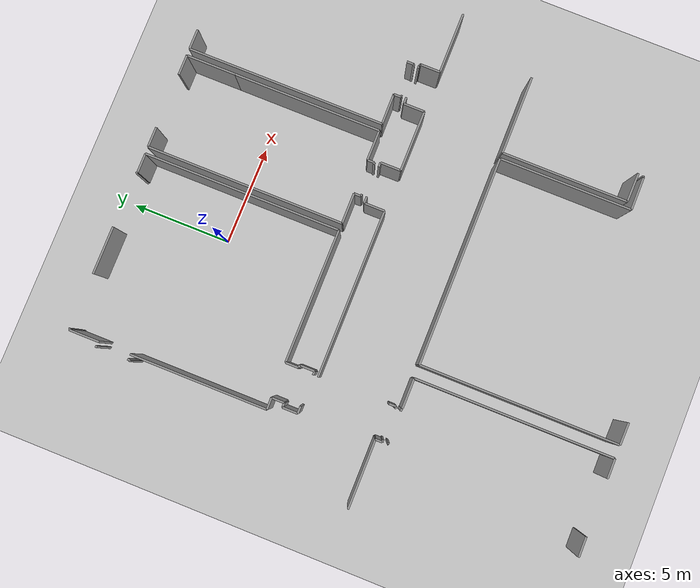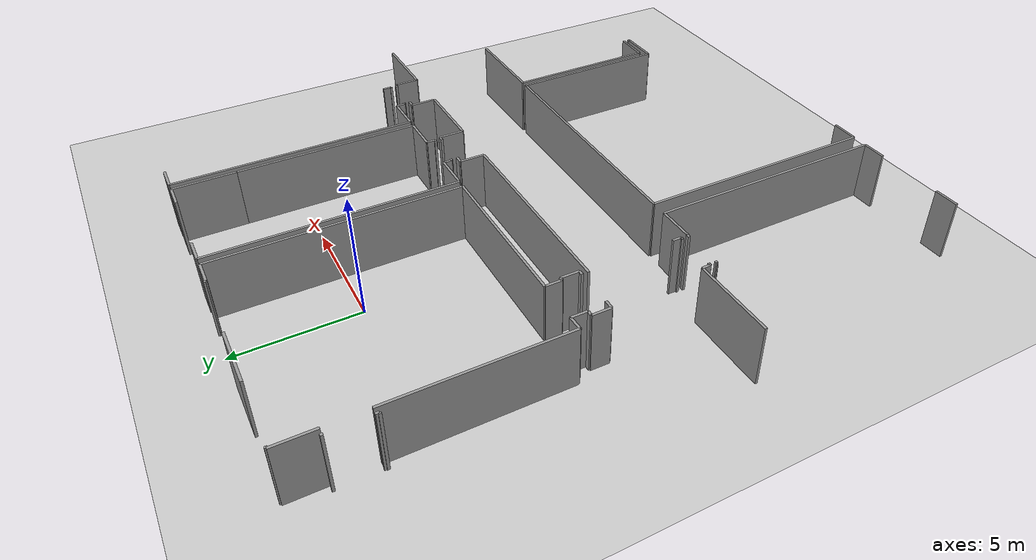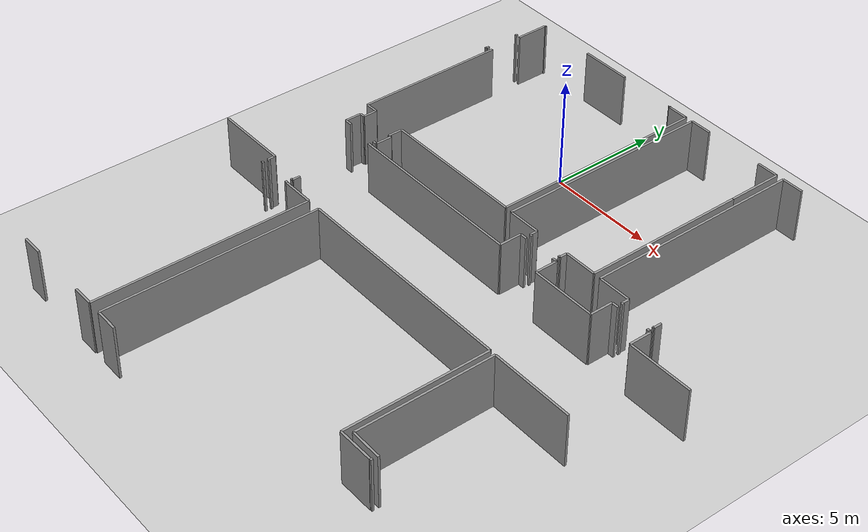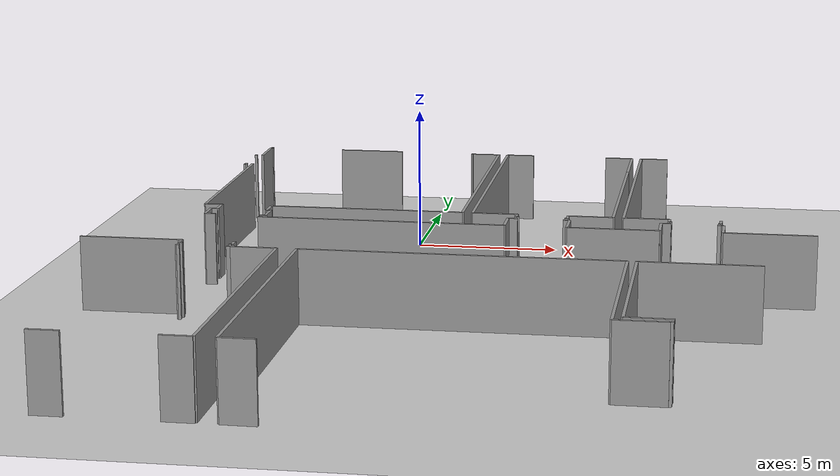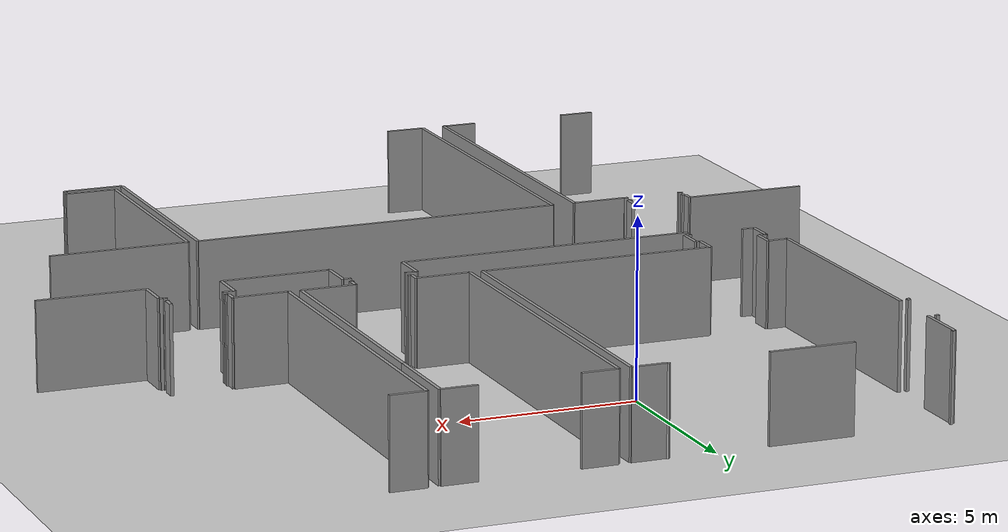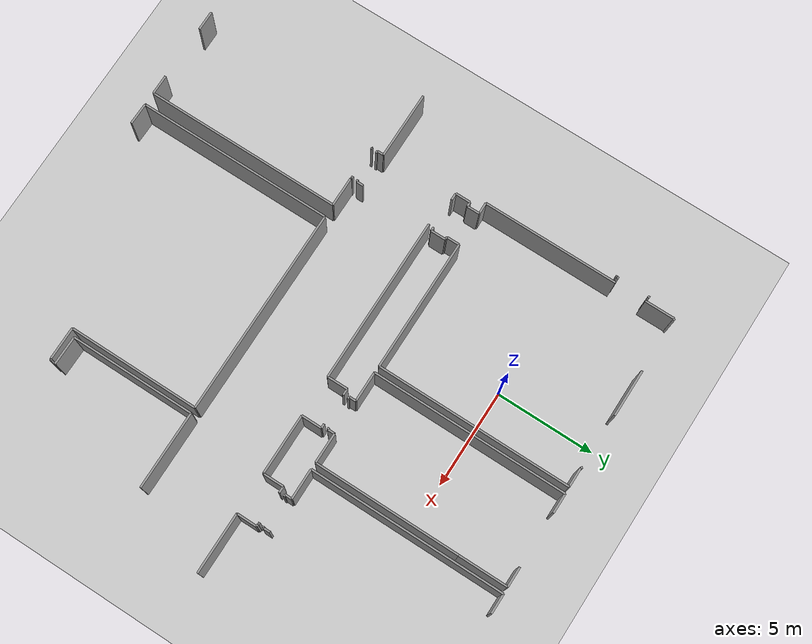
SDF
<sdf version="1.6">
 <world name="default">
  <model name="ground_plane">
   <static>1</static>
   <link name="link">
    <collision name="collision">
     <geometry><plane><normal>0 0 1</normal><size>100 100</size></plane></geometry>
     <surface><friction><ode><mu>100</mu><mu2>50</mu2></ode></friction></surface>
    </collision>
    <visual name="visual">
     <cast_shadows>0</cast_shadows>
     <geometry><plane><normal>0 0 1</normal><size>100 100</size></plane></geometry>
     <material>
      <script><uri>file://media/materials/scripts/gazebo.material</uri><name>Gazebo/Grey</name></script>
     </material>
    </visual>
   </link>
  </model>
  <model name="50055638">
   <static>1</static>
   <link name="Wall_249">
    <collision name="Wall_249_Collision">
     <geometry><box><size>8.40841642359 0.1 2.5</size></box></geometry>
     <pose>4.2042082118 0 1.25 0 0 0</pose>
    </collision>
    <visual name="Wall_249_Visual">
     <pose>4.2042082118 0 1.25 0 0 0</pose>
     <geometry><box><size>8.40841642359 0.1 2.5</size></box></geometry>
     <material>
      <script><uri>file://media/materials/scripts/gazebo.material</uri><name>Gazebo/Grey</name></script>
      <ambient>1 1 1 1</ambient>
     </material>
    </visual>
    <pose>66.1795003781 -27.6007727553 0 0 0 0.0</pose>
   </link>
   <link name="Wall_250">
    <collision name="Wall_250_Collision">
     <geometry><box><size>1.03114534281 0.1 2.5</size></box></geometry>
     <pose>0.515572671407 0 1.25 0 0 0</pose>
    </collision>
    <visual name="Wall_250_Visual">
     <pose>0.515572671407 0 1.25 0 0 0</pose>
     <geometry><box><size>1.03114534281 0.1 2.5</size></box></geometry>
     <material>
      <script><uri>file://media/materials/scripts/gazebo.material</uri><name>Gazebo/Grey</name></script>
      <ambient>1 1 1 1</ambient>
     </material>
    </visual>
    <pose>74.5879168017 -27.6007727553 0 0 0 1.57079632679</pose>
   </link>
   <link name="Wall_251">
    <collision name="Wall_251_Collision">
     <geometry><box><size>0.328420999117 0.1 2.5</size></box></geometry>
     <pose>0.164210499558 0 1.25 0 0 0</pose>
    </collision>
    <visual name="Wall_251_Visual">
     <pose>0.164210499558 0 1.25 0 0 0</pose>
     <geometry><box><size>0.328420999117 0.1 2.5</size></box></geometry>
     <material>
      <script><uri>file://media/materials/scripts/gazebo.material</uri><name>Gazebo/Grey</name></script>
      <ambient>1 1 1 1</ambient>
     </material>
    </visual>
    <pose>74.5879168017 -26.5696274125 0 0 0 0.0</pose>
   </link>
   <link name="Wall_252">
    <collision name="Wall_252_Collision">
     <geometry><box><size>0.226234279577 0.1 2.5</size></box></geometry>
     <pose>0.113117139789 0 1.25 0 0 0</pose>
    </collision>
    <visual name="Wall_252_Visual">
     <pose>0.113117139789 0 1.25 0 0 0</pose>
     <geometry><box><size>0.226234279577 0.1 2.5</size></box></geometry>
     <material>
      <script><uri>file://media/materials/scripts/gazebo.material</uri><name>Gazebo/Grey</name></script>
      <ambient>1 1 1 1</ambient>
     </material>
    </visual>
    <pose>76.4529515312 -26.5696274125 0 0 0 0.0</pose>
   </link>
   <link name="Wall_253">
    <collision name="Wall_253_Collision">
     <geometry><box><size>1.03559376966 0.1 2.5</size></box></geometry>
     <pose>0.51779688483 0 1.25 0 0 0</pose>
    </collision>
    <visual name="Wall_253_Visual">
     <pose>0.51779688483 0 1.25 0 0 0</pose>
     <geometry><box><size>1.03559376966 0.1 2.5</size></box></geometry>
     <material>
      <script><uri>file://media/materials/scripts/gazebo.material</uri><name>Gazebo/Grey</name></script>
      <ambient>1 1 1 1</ambient>
     </material>
    </visual>
    <pose>76.6791858108 -26.5696274125 0 0 0 -1.57079632679</pose>
   </link>
   <link name="Wall_254">
    <collision name="Wall_254_Collision">
     <geometry><box><size>3.06636417364 0.1 2.5</size></box></geometry>
     <pose>1.53318208682 0 1.25 0 0 0</pose>
    </collision>
    <visual name="Wall_254_Visual">
     <pose>1.53318208682 0 1.25 0 0 0</pose>
     <geometry><box><size>3.06636417364 0.1 2.5</size></box></geometry>
     <material>
      <script><uri>file://media/materials/scripts/gazebo.material</uri><name>Gazebo/Grey</name></script>
      <ambient>1 1 1 1</ambient>
     </material>
    </visual>
    <pose>76.6791858108 -27.6052211821 0 0 0 0.0</pose>
   </link>
   <link name="Wall_255">
    <collision name="Wall_255_Collision">
     <geometry><box><size>1.05326037913 0.1 2.5</size></box></geometry>
     <pose>0.526630189567 0 1.25 0 0 0</pose>
    </collision>
    <visual name="Wall_255_Visual">
     <pose>0.526630189567 0 1.25 0 0 0</pose>
     <geometry><box><size>1.05326037913 0.1 2.5</size></box></geometry>
     <material>
      <script><uri>file://media/materials/scripts/gazebo.material</uri><name>Gazebo/Grey</name></script>
      <ambient>1 1 1 1</ambient>
     </material>
    </visual>
    <pose>79.7455499844 -27.6052211821 0 0 0 1.57079632679</pose>
   </link>
   <link name="Wall_256">
    <collision name="Wall_256_Collision">
     <geometry><box><size>0.328548097027 0.1 2.5</size></box></geometry>
     <pose>0.164274048513 0 1.25 0 0 0</pose>
    </collision>
    <visual name="Wall_256_Visual">
     <pose>0.164274048513 0 1.25 0 0 0</pose>
     <geometry><box><size>0.328548097027 0.1 2.5</size></box></geometry>
     <material>
      <script><uri>file://media/materials/scripts/gazebo.material</uri><name>Gazebo/Grey</name></script>
      <ambient>1 1 1 1</ambient>
     </material>
    </visual>
    <pose>79.7455499844 -26.551960803 0 0 0 0.0</pose>
   </link>
   <link name="Wall_257">
    <collision name="Wall_257_Collision">
     <geometry><box><size>0.122522385119 0.1 2.5</size></box></geometry>
     <pose>0.0612611925597 0 1.25 0 0 0</pose>
    </collision>
    <visual name="Wall_257_Visual">
     <pose>0.0612611925597 0 1.25 0 0 0</pose>
     <geometry><box><size>0.122522385119 0.1 2.5</size></box></geometry>
     <material>
      <script><uri>file://media/materials/scripts/gazebo.material</uri><name>Gazebo/Grey</name></script>
      <ambient>1 1 1 1</ambient>
     </material>
    </visual>
    <pose>81.614778945 -26.551960803 0 0 0 0.0</pose>
   </link>
   <link name="Wall_258">
    <collision name="Wall_258_Collision">
     <geometry><box><size>0.0277073443527 0.1 2.5</size></box></geometry>
     <pose>0.0138536721764 0 1.25 0 0 0</pose>
    </collision>
    <visual name="Wall_258_Visual">
     <pose>0.0138536721764 0 1.25 0 0 0</pose>
     <geometry><box><size>0.0277073443527 0.1 2.5</size></box></geometry>
     <material>
      <script><uri>file://media/materials/scripts/gazebo.material</uri><name>Gazebo/Grey</name></script>
      <ambient>1 1 1 1</ambient>
     </material>
    </visual>
    <pose>81.7373013301 -26.551960803 0 0 0 -1.57079632679</pose>
   </link>
   <link name="Wall_259">
    <collision name="Wall_259_Collision">
     <geometry><box><size>0.0911292013803 0.1 2.5</size></box></geometry>
     <pose>0.0455646006901 0 1.25 0 0 0</pose>
    </collision>
    <visual name="Wall_259_Visual">
     <pose>0.0455646006901 0 1.25 0 0 0</pose>
     <geometry><box><size>0.0911292013803 0.1 2.5</size></box></geometry>
     <material>
      <script><uri>file://media/materials/scripts/gazebo.material</uri><name>Gazebo/Grey</name></script>
      <ambient>1 1 1 1</ambient>
     </material>
    </visual>
    <pose>81.7373013301 -26.5796681474 0 0 0 0.0</pose>
   </link>
   <link name="Wall_260">
    <collision name="Wall_260_Collision">
     <geometry><box><size>1.01843555183 0.1 2.5</size></box></geometry>
     <pose>0.509217775914 0 1.25 0 0 0</pose>
    </collision>
    <visual name="Wall_260_Visual">
     <pose>0.509217775914 0 1.25 0 0 0</pose>
     <geometry><box><size>1.01843555183 0.1 2.5</size></box></geometry>
     <material>
      <script><uri>file://media/materials/scripts/gazebo.material</uri><name>Gazebo/Grey</name></script>
      <ambient>1 1 1 1</ambient>
     </material>
    </visual>
    <pose>81.8284305315 -26.5796681474 0 0 0 -1.57079632679</pose>
   </link>
   <link name="Wall_261">
    <collision name="Wall_261_Collision">
     <geometry><box><size>3.07182938377 0.1 2.5</size></box></geometry>
     <pose>1.53591469188 0 1.25 0 0 0</pose>
    </collision>
    <visual name="Wall_261_Visual">
     <pose>1.53591469188 0 1.25 0 0 0</pose>
     <geometry><box><size>3.07182938377 0.1 2.5</size></box></geometry>
     <material>
      <script><uri>file://media/materials/scripts/gazebo.material</uri><name>Gazebo/Grey</name></script>
      <ambient>1 1 1 1</ambient>
     </material>
    </visual>
    <pose>81.8284305315 -27.5981036992 0 0 0 0.0</pose>
   </link>
   <link name="Wall_297">
    <collision name="Wall_297_Collision">
     <geometry><box><size>0.356763833019 0.1 2.5</size></box></geometry>
     <pose>0.178381916509 0 1.25 0 0 0</pose>
    </collision>
    <visual name="Wall_297_Visual">
     <pose>0.178381916509 0 1.25 0 0 0</pose>
     <geometry><box><size>0.356763833019 0.1 2.5</size></box></geometry>
     <material>
      <script><uri>file://media/materials/scripts/gazebo.material</uri><name>Gazebo/Grey</name></script>
      <ambient>1 1 1 1</ambient>
     </material>
    </visual>
    <pose>66.2657998589 -31.1180803132 0 0 0 -1.57079632679</pose>
   </link>
   <link name="Wall_298">
    <collision name="Wall_298_Collision">
     <geometry><box><size>0.108668712943 0.1 2.5</size></box></geometry>
     <pose>0.0543343564715 0 1.25 0 0 0</pose>
    </collision>
    <visual name="Wall_298_Visual">
     <pose>0.0543343564715 0 1.25 0 0 0</pose>
     <geometry><box><size>0.108668712943 0.1 2.5</size></box></geometry>
     <material>
      <script><uri>file://media/materials/scripts/gazebo.material</uri><name>Gazebo/Grey</name></script>
      <ambient>1 1 1 1</ambient>
     </material>
    </visual>
    <pose>66.2657998589 -31.4748441462 0 0 0 3.14159265359</pose>
   </link>
   <link name="Wall_299">
    <collision name="Wall_299_Collision">
     <geometry><box><size>0.109939692042 0.1 2.5</size></box></geometry>
     <pose>0.0549698460209 0 1.25 0 0 0</pose>
    </collision>
    <visual name="Wall_299_Visual">
     <pose>0.0549698460209 0 1.25 0 0 0</pose>
     <geometry><box><size>0.109939692042 0.1 2.5</size></box></geometry>
     <material>
      <script><uri>file://media/materials/scripts/gazebo.material</uri><name>Gazebo/Grey</name></script>
      <ambient>1 1 1 1</ambient>
     </material>
    </visual>
    <pose>64.6254742341 -31.4748441462 0 0 0 3.14159265359</pose>
   </link>
   <link name="Wall_300">
    <collision name="Wall_300_Collision">
     <geometry><box><size>0.343037258752 0.1 2.5</size></box></geometry>
     <pose>0.171518629376 0 1.25 0 0 0</pose>
    </collision>
    <visual name="Wall_300_Visual">
     <pose>0.171518629376 0 1.25 0 0 0</pose>
     <geometry><box><size>0.343037258752 0.1 2.5</size></box></geometry>
     <material>
      <script><uri>file://media/materials/scripts/gazebo.material</uri><name>Gazebo/Grey</name></script>
      <ambient>1 1 1 1</ambient>
     </material>
    </visual>
    <pose>64.515534542 -31.4748441462 0 0 0 1.57079632679</pose>
   </link>
   <link name="Wall_301">
    <collision name="Wall_301_Collision">
     <geometry><box><size>3.41766279654 0.1 2.5</size></box></geometry>
     <pose>1.70883139827 0 1.25 0 0 0</pose>
    </collision>
    <visual name="Wall_301_Visual">
     <pose>1.70883139827 0 1.25 0 0 0</pose>
     <geometry><box><size>3.41766279654 0.1 2.5</size></box></geometry>
     <material>
      <script><uri>file://media/materials/scripts/gazebo.material</uri><name>Gazebo/Grey</name></script>
      <ambient>1 1 1 1</ambient>
     </material>
    </visual>
    <pose>64.515534542 -31.1318068874 0 0 0 3.14159265359</pose>
   </link>
   <link name="Wall_328">
    <collision name="Wall_328_Collision">
     <geometry><box><size>0.100534446711 0.1 2.5</size></box></geometry>
     <pose>0.0502672233555 0 1.25 0 0 0</pose>
    </collision>
    <visual name="Wall_328_Visual">
     <pose>0.0502672233555 0 1.25 0 0 0</pose>
     <geometry><box><size>0.100534446711 0.1 2.5</size></box></geometry>
     <material>
      <script><uri>file://media/materials/scripts/gazebo.material</uri><name>Gazebo/Grey</name></script>
      <ambient>1 1 1 1</ambient>
     </material>
    </visual>
    <pose>63.6727483017 -17.4091726562 0 0 0 -1.57079632679</pose>
   </link>
   <link name="Wall_329">
    <collision name="Wall_329_Collision">
     <geometry><box><size>0.132944413729 0.1 2.5</size></box></geometry>
     <pose>0.0664722068646 0 1.25 0 0 0</pose>
    </collision>
    <visual name="Wall_329_Visual">
     <pose>0.0664722068646 0 1.25 0 0 0</pose>
     <geometry><box><size>0.132944413729 0.1 2.5</size></box></geometry>
     <material>
      <script><uri>file://media/materials/scripts/gazebo.material</uri><name>Gazebo/Grey</name></script>
      <ambient>1 1 1 1</ambient>
     </material>
    </visual>
    <pose>63.6727483017 -19.0394575461 0 0 0 -1.57079632679</pose>
   </link>
   <link name="Wall_330">
    <collision name="Wall_330_Collision">
     <geometry><box><size>0.0743522772768 0.1 2.5</size></box></geometry>
     <pose>0.0371761386384 0 1.25 0 0 0</pose>
    </collision>
    <visual name="Wall_330_Visual">
     <pose>0.0371761386384 0 1.25 0 0 0</pose>
     <geometry><box><size>0.0743522772768 0.1 2.5</size></box></geometry>
     <material>
      <script><uri>file://media/materials/scripts/gazebo.material</uri><name>Gazebo/Grey</name></script>
      <ambient>1 1 1 1</ambient>
     </material>
    </visual>
    <pose>63.6727483017 -19.1724019598 0 0 0 3.14159265359</pose>
   </link>
   <link name="Wall_333">
    <collision name="Wall_333_Collision">
     <geometry><box><size>6.89595129608 0.1 2.5</size></box></geometry>
     <pose>3.44797564804 0 1.25 0 0 0</pose>
    </collision>
    <visual name="Wall_333_Visual">
     <pose>3.44797564804 0 1.25 0 0 0</pose>
     <geometry><box><size>6.89595129608 0.1 2.5</size></box></geometry>
     <material>
      <script><uri>file://media/materials/scripts/gazebo.material</uri><name>Gazebo/Grey</name></script>
      <ambient>1 1 1 1</ambient>
     </material>
    </visual>
    <pose>63.9221144008 -25.9557445078 0 0 0 1.57079632679</pose>
   </link>
   <link name="Wall_334">
    <collision name="Wall_334_Collision">
     <geometry><box><size>1.51297351915 0.1 2.5</size></box></geometry>
     <pose>0.756486759575 0 1.25 0 0 0</pose>
    </collision>
    <visual name="Wall_334_Visual">
     <pose>0.756486759575 0 1.25 0 0 0</pose>
     <geometry><box><size>1.51297351915 0.1 2.5</size></box></geometry>
     <material>
      <script><uri>file://media/materials/scripts/gazebo.material</uri><name>Gazebo/Grey</name></script>
      <ambient>1 1 1 1</ambient>
     </material>
    </visual>
    <pose>63.9221144008 -17.4926759829 0 0 0 1.57079632679</pose>
   </link>
   <link name="Wall_335">
    <collision name="Wall_335_Collision">
     <geometry><box><size>0.0868078724445 0.1 2.5</size></box></geometry>
     <pose>0.0434039362223 0 1.25 0 0 0</pose>
    </collision>
    <visual name="Wall_335_Visual">
     <pose>0.0434039362223 0 1.25 0 0 0</pose>
     <geometry><box><size>0.0868078724445 0.1 2.5</size></box></geometry>
     <material>
      <script><uri>file://media/materials/scripts/gazebo.material</uri><name>Gazebo/Grey</name></script>
      <ambient>1 1 1 1</ambient>
     </material>
    </visual>
    <pose>63.9221144008 -15.9797024638 0 0 0 0.0</pose>
   </link>
   <link name="Wall_336">
    <collision name="Wall_336_Collision">
     <geometry><box><size>2.39503301368 0.1 2.5</size></box></geometry>
     <pose>1.19751650684 0 1.25 0 0 0</pose>
    </collision>
    <visual name="Wall_336_Visual">
     <pose>1.19751650684 0 1.25 0 0 0</pose>
     <geometry><box><size>2.39503301368 0.1 2.5</size></box></geometry>
     <material>
      <script><uri>file://media/materials/scripts/gazebo.material</uri><name>Gazebo/Grey</name></script>
      <ambient>1 1 1 1</ambient>
     </material>
    </visual>
    <pose>66.7560164973 -15.9797024638 0 0 0 0.0</pose>
   </link>
   <link name="Wall_337">
    <collision name="Wall_337_Collision">
     <geometry><box><size>0.0801120216032 0.1 2.5</size></box></geometry>
     <pose>0.0400560108016 0 1.25 0 0 0</pose>
    </collision>
    <visual name="Wall_337_Visual">
     <pose>0.0400560108016 0 1.25 0 0 0</pose>
     <geometry><box><size>0.0801120216032 0.1 2.5</size></box></geometry>
     <material>
      <script><uri>file://media/materials/scripts/gazebo.material</uri><name>Gazebo/Grey</name></script>
      <ambient>1 1 1 1</ambient>
     </material>
    </visual>
    <pose>71.905261218 -15.9797024638 0 0 0 -0.729277380696</pose>
   </link>
   <link name="Wall_338">
    <collision name="Wall_338_Collision">
     <geometry><box><size>0.981831353783 0.1 2.5</size></box></geometry>
     <pose>0.490915676892 0 1.25 0 0 0</pose>
    </collision>
    <visual name="Wall_338_Visual">
     <pose>0.490915676892 0 1.25 0 0 0</pose>
     <geometry><box><size>0.981831353783 0.1 2.5</size></box></geometry>
     <material>
      <script><uri>file://media/materials/scripts/gazebo.material</uri><name>Gazebo/Grey</name></script>
      <ambient>1 1 1 1</ambient>
     </material>
    </visual>
    <pose>71.9649972356 -16.0330835859 0 0 0 0.0</pose>
   </link>
   <link name="Wall_339">
    <collision name="Wall_339_Collision">
     <geometry><box><size>9.90334203954 0.1 2.5</size></box></geometry>
     <pose>4.95167101977 0 1.25 0 0 0</pose>
    </collision>
    <visual name="Wall_339_Visual">
     <pose>4.95167101977 0 1.25 0 0 0</pose>
     <geometry><box><size>9.90334203954 0.1 2.5</size></box></geometry>
     <material>
      <script><uri>file://media/materials/scripts/gazebo.material</uri><name>Gazebo/Grey</name></script>
      <ambient>1 1 1 1</ambient>
     </material>
    </visual>
    <pose>72.9468285894 -16.0330835859 0 0 0 -1.57079632679</pose>
   </link>
   <link name="Wall_340">
    <collision name="Wall_340_Collision">
     <geometry><box><size>6.69348432565 0.1 2.5</size></box></geometry>
     <pose>3.34674216283 0 1.25 0 0 0</pose>
    </collision>
    <visual name="Wall_340_Visual">
     <pose>3.34674216283 0 1.25 0 0 0</pose>
     <geometry><box><size>6.69348432565 0.1 2.5</size></box></geometry>
     <material>
      <script><uri>file://media/materials/scripts/gazebo.material</uri><name>Gazebo/Grey</name></script>
      <ambient>1 1 1 1</ambient>
     </material>
    </visual>
    <pose>72.9468285894 -25.9364256255 0 0 0 3.14159265359</pose>
   </link>
   <link name="Wall_341">
    <collision name="Wall_341_Collision">
     <geometry><box><size>0.66065493553 0.1 2.5</size></box></geometry>
     <pose>0.330327467765 0 1.25 0 0 0</pose>
    </collision>
    <visual name="Wall_341_Visual">
     <pose>0.330327467765 0 1.25 0 0 0</pose>
     <geometry><box><size>0.66065493553 0.1 2.5</size></box></geometry>
     <material>
      <script><uri>file://media/materials/scripts/gazebo.material</uri><name>Gazebo/Grey</name></script>
      <ambient>1 1 1 1</ambient>
     </material>
    </visual>
    <pose>66.2533442638 -25.9364256255 0 0 0 -1.57079632679</pose>
   </link>
   <link name="Wall_342">
    <collision name="Wall_342_Collision">
     <geometry><box><size>0.128750182703 0.1 2.5</size></box></geometry>
     <pose>0.0643750913516 0 1.25 0 0 0</pose>
    </collision>
    <visual name="Wall_342_Visual">
     <pose>0.0643750913516 0 1.25 0 0 0</pose>
     <geometry><box><size>0.128750182703 0.1 2.5</size></box></geometry>
     <material>
      <script><uri>file://media/materials/scripts/gazebo.material</uri><name>Gazebo/Grey</name></script>
      <ambient>1 1 1 1</ambient>
     </material>
    </visual>
    <pose>66.2533442638 -26.597080561 0 0 0 0.0</pose>
   </link>
   <link name="Wall_343">
    <collision name="Wall_343_Collision">
     <geometry><box><size>0.752673822279 0.1 2.5</size></box></geometry>
     <pose>0.376336911139 0 1.25 0 0 0</pose>
    </collision>
    <visual name="Wall_343_Visual">
     <pose>0.376336911139 0 1.25 0 0 0</pose>
     <geometry><box><size>0.752673822279 0.1 2.5</size></box></geometry>
     <material>
      <script><uri>file://media/materials/scripts/gazebo.material</uri><name>Gazebo/Grey</name></script>
      <ambient>1 1 1 1</ambient>
     </material>
    </visual>
    <pose>66.3820944465 -26.597080561 0 0 0 -1.57079632679</pose>
   </link>
   <link name="Wall_344">
    <collision name="Wall_344_Collision">
     <geometry><box><size>0.188232004525 0.1 2.5</size></box></geometry>
     <pose>0.0941160022623 0 1.25 0 0 0</pose>
    </collision>
    <visual name="Wall_344_Visual">
     <pose>0.0941160022623 0 1.25 0 0 0</pose>
     <geometry><box><size>0.188232004525 0.1 2.5</size></box></geometry>
     <material>
      <script><uri>file://media/materials/scripts/gazebo.material</uri><name>Gazebo/Grey</name></script>
      <ambient>1 1 1 1</ambient>
     </material>
    </visual>
    <pose>66.3820944465 -27.3497543833 0 0 0 3.14159265359</pose>
   </link>
   <link name="Wall_345">
    <collision name="Wall_345_Collision">
     <geometry><box><size>0.361466455684 0.1 2.5</size></box></geometry>
     <pose>0.180733227842 0 1.25 0 0 0</pose>
    </collision>
    <visual name="Wall_345_Visual">
     <pose>0.180733227842 0 1.25 0 0 0</pose>
     <geometry><box><size>0.361466455684 0.1 2.5</size></box></geometry>
     <material>
      <script><uri>file://media/materials/scripts/gazebo.material</uri><name>Gazebo/Grey</name></script>
      <ambient>1 1 1 1</ambient>
     </material>
    </visual>
    <pose>64.6412343749 -27.3497543833 0 0 0 3.14159265359</pose>
   </link>
   <link name="Wall_346">
    <collision name="Wall_346_Collision">
     <geometry><box><size>0.765129417447 0.1 2.5</size></box></geometry>
     <pose>0.382564708723 0 1.25 0 0 0</pose>
    </collision>
    <visual name="Wall_346_Visual">
     <pose>0.382564708723 0 1.25 0 0 0</pose>
     <geometry><box><size>0.765129417447 0.1 2.5</size></box></geometry>
     <material>
      <script><uri>file://media/materials/scripts/gazebo.material</uri><name>Gazebo/Grey</name></script>
      <ambient>1 1 1 1</ambient>
     </material>
    </visual>
    <pose>64.2797679192 -27.3497543833 0 0 0 1.57079632679</pose>
   </link>
   <link name="Wall_347">
    <collision name="Wall_347_Collision">
     <geometry><box><size>0.228522041955 0.1 2.5</size></box></geometry>
     <pose>0.114261020978 0 1.25 0 0 0</pose>
    </collision>
    <visual name="Wall_347_Visual">
     <pose>0.114261020978 0 1.25 0 0 0</pose>
     <geometry><box><size>0.228522041955 0.1 2.5</size></box></geometry>
     <material>
      <script><uri>file://media/materials/scripts/gazebo.material</uri><name>Gazebo/Grey</name></script>
      <ambient>1 1 1 1</ambient>
     </material>
    </visual>
    <pose>64.2797679192 -26.5846249658 0 0 0 0.0</pose>
   </link>
   <link name="Wall_348">
    <collision name="Wall_348_Collision">
     <geometry><box><size>0.641336053229 0.1 2.5</size></box></geometry>
     <pose>0.320668026614 0 1.25 0 0 0</pose>
    </collision>
    <visual name="Wall_348_Visual">
     <pose>0.320668026614 0 1.25 0 0 0</pose>
     <geometry><box><size>0.641336053229 0.1 2.5</size></box></geometry>
     <material>
      <script><uri>file://media/materials/scripts/gazebo.material</uri><name>Gazebo/Grey</name></script>
      <ambient>1 1 1 1</ambient>
     </material>
    </visual>
    <pose>64.5082899612 -26.5846249658 0 0 0 1.57079632679</pose>
   </link>
   <link name="Wall_349">
    <collision name="Wall_349_Collision">
     <geometry><box><size>0.586307879355 0.1 2.5</size></box></geometry>
     <pose>0.293153939678 0 1.25 0 0 0</pose>
    </collision>
    <visual name="Wall_349_Visual">
     <pose>0.293153939678 0 1.25 0 0 0</pose>
     <geometry><box><size>0.586307879355 0.1 2.5</size></box></geometry>
     <material>
      <script><uri>file://media/materials/scripts/gazebo.material</uri><name>Gazebo/Grey</name></script>
      <ambient>1 1 1 1</ambient>
     </material>
    </visual>
    <pose>64.5082899612 -25.9432889126 0 0 0 -3.12034693493</pose>
   </link>
   <link name="Wall_350">
    <collision name="Wall_350_Collision">
     <geometry><box><size>9.93905655221 0.1 2.5</size></box></geometry>
     <pose>4.96952827611 0 1.25 0 0 0</pose>
    </collision>
    <visual name="Wall_350_Visual">
     <pose>4.96952827611 0 1.25 0 0 0</pose>
     <geometry><box><size>9.93905655221 0.1 2.5</size></box></geometry>
     <material>
      <script><uri>file://media/materials/scripts/gazebo.material</uri><name>Gazebo/Grey</name></script>
      <ambient>1 1 1 1</ambient>
     </material>
    </visual>
    <pose>73.297110429 -25.9553632141 0 0 0 1.57079632679</pose>
   </link>
   <link name="Wall_351">
    <collision name="Wall_351_Collision">
     <geometry><box><size>1.01004708978 0.1 2.5</size></box></geometry>
     <pose>0.505023544888 0 1.25 0 0 0</pose>
    </collision>
    <visual name="Wall_351_Visual">
     <pose>0.505023544888 0 1.25 0 0 0</pose>
     <geometry><box><size>1.01004708978 0.1 2.5</size></box></geometry>
     <material>
      <script><uri>file://media/materials/scripts/gazebo.material</uri><name>Gazebo/Grey</name></script>
      <ambient>1 1 1 1</ambient>
     </material>
    </visual>
    <pose>73.297110429 -16.0163066618 0 0 0 0.0</pose>
   </link>
   <link name="Wall_352">
    <collision name="Wall_352_Collision">
     <geometry><box><size>1.01004708978 0.1 2.5</size></box></geometry>
     <pose>0.505023544888 0 1.25 0 0 0</pose>
    </collision>
    <visual name="Wall_352_Visual">
     <pose>0.505023544888 0 1.25 0 0 0</pose>
     <geometry><box><size>1.01004708978 0.1 2.5</size></box></geometry>
     <material>
      <script><uri>file://media/materials/scripts/gazebo.material</uri><name>Gazebo/Grey</name></script>
      <ambient>1 1 1 1</ambient>
     </material>
    </visual>
    <pose>77.0865346119 -16.0163066618 0 0 0 0.0</pose>
   </link>
   <link name="Wall_353">
    <collision name="Wall_353_Collision">
     <geometry><box><size>2.49849071232 0.1 2.5</size></box></geometry>
     <pose>1.24924535616 0 1.25 0 0 0</pose>
    </collision>
    <visual name="Wall_353_Visual">
     <pose>1.24924535616 0 1.25 0 0 0</pose>
     <geometry><box><size>2.49849071232 0.1 2.5</size></box></geometry>
     <material>
      <script><uri>file://media/materials/scripts/gazebo.material</uri><name>Gazebo/Grey</name></script>
      <ambient>1 1 1 1</ambient>
     </material>
    </visual>
    <pose>78.0965817017 -16.0163066618 0 0 0 -1.57079632679</pose>
   </link>
   <link name="Wall_354">
    <collision name="Wall_354_Collision">
     <geometry><box><size>7.42912702801 0.1 2.5</size></box></geometry>
     <pose>3.714563514 0 1.25 0 0 0</pose>
    </collision>
    <visual name="Wall_354_Visual">
     <pose>3.714563514 0 1.25 0 0 0</pose>
     <geometry><box><size>7.42912702801 0.1 2.5</size></box></geometry>
     <material>
      <script><uri>file://media/materials/scripts/gazebo.material</uri><name>Gazebo/Grey</name></script>
      <ambient>1 1 1 1</ambient>
     </material>
    </visual>
    <pose>78.0965817017 -18.5147973742 0 0 0 -1.57079632679</pose>
   </link>
   <link name="Wall_355">
    <collision name="Wall_355_Collision">
     <geometry><box><size>1.52555621223 0.1 2.5</size></box></geometry>
     <pose>0.762778106114 0 1.25 0 0 0</pose>
    </collision>
    <visual name="Wall_355_Visual">
     <pose>0.762778106114 0 1.25 0 0 0</pose>
     <geometry><box><size>1.52555621223 0.1 2.5</size></box></geometry>
     <material>
      <script><uri>file://media/materials/scripts/gazebo.material</uri><name>Gazebo/Grey</name></script>
      <ambient>1 1 1 1</ambient>
     </material>
    </visual>
    <pose>78.0965817017 -25.9439244022 0 0 0 3.14159265359</pose>
   </link>
   <link name="Wall_356">
    <collision name="Wall_356_Collision">
     <geometry><box><size>0.354984462281 0.1 2.5</size></box></geometry>
     <pose>0.17749223114 0 1.25 0 0 0</pose>
    </collision>
    <visual name="Wall_356_Visual">
     <pose>0.17749223114 0 1.25 0 0 0</pose>
     <geometry><box><size>0.354984462281 0.1 2.5</size></box></geometry>
     <material>
      <script><uri>file://media/materials/scripts/gazebo.material</uri><name>Gazebo/Grey</name></script>
      <ambient>1 1 1 1</ambient>
     </material>
    </visual>
    <pose>76.5710254895 -25.9439244022 0 0 0 -1.57079632679</pose>
   </link>
   <link name="Wall_357">
    <collision name="Wall_357_Collision">
     <geometry><box><size>0.0908750055605 0.1 2.5</size></box></geometry>
     <pose>0.0454375027803 0 1.25 0 0 0</pose>
    </collision>
    <visual name="Wall_357_Visual">
     <pose>0.0454375027803 0 1.25 0 0 0</pose>
     <geometry><box><size>0.0908750055605 0.1 2.5</size></box></geometry>
     <material>
      <script><uri>file://media/materials/scripts/gazebo.material</uri><name>Gazebo/Grey</name></script>
      <ambient>1 1 1 1</ambient>
     </material>
    </visual>
    <pose>76.5710254895 -26.2989088644 0 0 0 3.14159265359</pose>
   </link>
   <link name="Wall_358">
    <collision name="Wall_358_Collision">
     <geometry><box><size>0.108414517123 0.1 2.5</size></box></geometry>
     <pose>0.0542072585616 0 1.25 0 0 0</pose>
    </collision>
    <visual name="Wall_358_Visual">
     <pose>0.0542072585616 0 1.25 0 0 0</pose>
     <geometry><box><size>0.108414517123 0.1 2.5</size></box></geometry>
     <material>
      <script><uri>file://media/materials/scripts/gazebo.material</uri><name>Gazebo/Grey</name></script>
      <ambient>1 1 1 1</ambient>
     </material>
    </visual>
    <pose>74.9420115786 -26.2989088644 0 0 0 3.14159265359</pose>
   </link>
   <link name="Wall_359">
    <collision name="Wall_359_Collision">
     <geometry><box><size>0.348375370967 0.1 2.5</size></box></geometry>
     <pose>0.174187685484 0 1.25 0 0 0</pose>
    </collision>
    <visual name="Wall_359_Visual">
     <pose>0.174187685484 0 1.25 0 0 0</pose>
     <geometry><box><size>0.348375370967 0.1 2.5</size></box></geometry>
     <material>
      <script><uri>file://media/materials/scripts/gazebo.material</uri><name>Gazebo/Grey</name></script>
      <ambient>1 1 1 1</ambient>
     </material>
    </visual>
    <pose>74.8335970615 -26.2989088644 0 0 0 1.57079632679</pose>
   </link>
   <link name="Wall_360">
    <collision name="Wall_360_Collision">
     <geometry><box><size>1.53649422322 0.1 2.5</size></box></geometry>
     <pose>0.768247111609 0 1.25 0 0 0</pose>
    </collision>
    <visual name="Wall_360_Visual">
     <pose>0.768247111609 0 1.25 0 0 0</pose>
     <geometry><box><size>1.53649422322 0.1 2.5</size></box></geometry>
     <material>
      <script><uri>file://media/materials/scripts/gazebo.material</uri><name>Gazebo/Grey</name></script>
      <ambient>1 1 1 1</ambient>
     </material>
    </visual>
    <pose>74.8335970615 -25.9505334935 0 0 0 -3.13844931048</pose>
   </link>
   <link name="Wall_361">
    <collision name="Wall_361_Collision">
     <geometry><box><size>9.94197980414 0.1 2.5</size></box></geometry>
     <pose>4.97098990207 0 1.25 0 0 0</pose>
    </collision>
    <visual name="Wall_361_Visual">
     <pose>4.97098990207 0 1.25 0 0 0</pose>
     <geometry><box><size>9.94197980414 0.1 2.5</size></box></geometry>
     <material>
      <script><uri>file://media/materials/scripts/gazebo.material</uri><name>Gazebo/Grey</name></script>
      <ambient>1 1 1 1</ambient>
     </material>
    </visual>
    <pose>78.4449570727 -25.949770906 0 0 0 1.57079632679</pose>
   </link>
   <link name="Wall_362">
    <collision name="Wall_362_Collision">
     <geometry><box><size>1.00597995666 0.1 2.5</size></box></geometry>
     <pose>0.50298997833 0 1.25 0 0 0</pose>
    </collision>
    <visual name="Wall_362_Visual">
     <pose>0.50298997833 0 1.25 0 0 0</pose>
     <geometry><box><size>1.00597995666 0.1 2.5</size></box></geometry>
     <material>
      <script><uri>file://media/materials/scripts/gazebo.material</uri><name>Gazebo/Grey</name></script>
      <ambient>1 1 1 1</ambient>
     </material>
    </visual>
    <pose>78.4449570727 -16.0077911019 0 0 0 0.0</pose>
   </link>
   <link name="Wall_366">
    <collision name="Wall_366_Collision">
     <geometry><box><size>0.363118728513 0.1 2.5</size></box></geometry>
     <pose>0.181559364256 0 1.25 0 0 0</pose>
    </collision>
    <visual name="Wall_366_Visual">
     <pose>0.181559364256 0 1.25 0 0 0</pose>
     <geometry><box><size>0.363118728513 0.1 2.5</size></box></geometry>
     <material>
      <script><uri>file://media/materials/scripts/gazebo.material</uri><name>Gazebo/Grey</name></script>
      <ambient>1 1 1 1</ambient>
     </material>
    </visual>
    <pose>81.7178553499 -25.9402385628 0 0 0 -1.57079632679</pose>
   </link>
   <link name="Wall_367">
    <collision name="Wall_367_Collision">
     <geometry><box><size>0.0716832211694 0.1 2.5</size></box></geometry>
     <pose>0.0358416105847 0 1.25 0 0 0</pose>
    </collision>
    <visual name="Wall_367_Visual">
     <pose>0.0358416105847 0 1.25 0 0 0</pose>
     <geometry><box><size>0.0716832211694 0.1 2.5</size></box></geometry>
     <material>
      <script><uri>file://media/materials/scripts/gazebo.material</uri><name>Gazebo/Grey</name></script>
      <ambient>1 1 1 1</ambient>
     </material>
    </visual>
    <pose>81.7178553499 -26.3033572913 0 0 0 3.14159265359</pose>
   </link>
   <link name="Wall_368">
    <collision name="Wall_368_Collision">
     <geometry><box><size>0.0955776282259 0.1 2.5</size></box></geometry>
     <pose>0.047788814113 0 1.25 0 0 0</pose>
    </collision>
    <visual name="Wall_368_Visual">
     <pose>0.047788814113 0 1.25 0 0 0</pose>
     <geometry><box><size>0.0955776282259 0.1 2.5</size></box></geometry>
     <material>
      <script><uri>file://media/materials/scripts/gazebo.material</uri><name>Gazebo/Grey</name></script>
      <ambient>1 1 1 1</ambient>
     </material>
    </visual>
    <pose>80.0931627679 -26.3033572913 0 0 0 3.14159265359</pose>
   </link>
   <link name="Wall_369">
    <collision name="Wall_369_Collision">
     <geometry><box><size>0.362737434783 0.1 2.5</size></box></geometry>
     <pose>0.181368717391 0 1.25 0 0 0</pose>
    </collision>
    <visual name="Wall_369_Visual">
     <pose>0.181368717391 0 1.25 0 0 0</pose>
     <geometry><box><size>0.362737434783 0.1 2.5</size></box></geometry>
     <material>
      <script><uri>file://media/materials/scripts/gazebo.material</uri><name>Gazebo/Grey</name></script>
      <ambient>1 1 1 1</ambient>
     </material>
    </visual>
    <pose>79.9975851397 -26.3033572913 0 0 0 1.57079632679</pose>
   </link>
   <link name="Wall_370">
    <collision name="Wall_370_Collision">
     <geometry><box><size>1.55265503453 0.1 2.5</size></box></geometry>
     <pose>0.776327517263 0 1.25 0 0 0</pose>
    </collision>
    <visual name="Wall_370_Visual">
     <pose>0.776327517263 0 1.25 0 0 0</pose>
     <geometry><box><size>1.55265503453 0.1 2.5</size></box></geometry>
     <material>
      <script><uri>file://media/materials/scripts/gazebo.material</uri><name>Gazebo/Grey</name></script>
      <ambient>1 1 1 1</ambient>
     </material>
    </visual>
    <pose>79.9975851397 -25.9406198565 0 0 0 -3.13569881221</pose>
   </link>
   <link name="Wall_409">
    <collision name="Wall_409_Collision">
     <geometry><box><size>0.0219879384084 0.1 2.5</size></box></geometry>
     <pose>0.0109939692042 0 1.25 0 0 0</pose>
    </collision>
    <visual name="Wall_409_Visual">
     <pose>0.0109939692042 0 1.25 0 0 0</pose>
     <geometry><box><size>0.0219879384084 0.1 2.5</size></box></geometry>
     <material>
      <script><uri>file://media/materials/scripts/gazebo.material</uri><name>Gazebo/Grey</name></script>
      <ambient>1 1 1 1</ambient>
     </material>
    </visual>
    <pose>64.5100693319 -31.7746681156 0 0 0 1.57079632679</pose>
   </link>
   <link name="Wall_410">
    <collision name="Wall_410_Collision">
     <geometry><box><size>0.093416963758 0.1 2.5</size></box></geometry>
     <pose>0.046708481879 0 1.25 0 0 0</pose>
    </collision>
    <visual name="Wall_410_Visual">
     <pose>0.046708481879 0 1.25 0 0 0</pose>
     <geometry><box><size>0.093416963758 0.1 2.5</size></box></geometry>
     <material>
      <script><uri>file://media/materials/scripts/gazebo.material</uri><name>Gazebo/Grey</name></script>
      <ambient>1 1 1 1</ambient>
     </material>
    </visual>
    <pose>64.5100693319 -31.7526801772 0 0 0 0.0</pose>
   </link>
   <link name="Wall_411">
    <collision name="Wall_411_Collision">
     <geometry><box><size>0.137138644755 0.1 2.5</size></box></geometry>
     <pose>0.0685693223775 0 1.25 0 0 0</pose>
    </collision>
    <visual name="Wall_411_Visual">
     <pose>0.0685693223775 0 1.25 0 0 0</pose>
     <geometry><box><size>0.137138644755 0.1 2.5</size></box></geometry>
     <material>
      <script><uri>file://media/materials/scripts/gazebo.material</uri><name>Gazebo/Grey</name></script>
      <ambient>1 1 1 1</ambient>
     </material>
    </visual>
    <pose>66.1493781735 -31.7526801772 0 0 0 0.0</pose>
   </link>
   <link name="Wall_412">
    <collision name="Wall_412_Collision">
     <geometry><box><size>0.021352448859 0.1 2.5</size></box></geometry>
     <pose>0.0106762244295 0 1.25 0 0 0</pose>
    </collision>
    <visual name="Wall_412_Visual">
     <pose>0.0106762244295 0 1.25 0 0 0</pose>
     <geometry><box><size>0.021352448859 0.1 2.5</size></box></geometry>
     <material>
      <script><uri>file://media/materials/scripts/gazebo.material</uri><name>Gazebo/Grey</name></script>
      <ambient>1 1 1 1</ambient>
     </material>
    </visual>
    <pose>66.2865168182 -31.7526801772 0 0 0 -1.57079632679</pose>
   </link>
   <link name="Wall_413">
    <collision name="Wall_413_Collision">
     <geometry><box><size>1.49988243443 0.1 2.5</size></box></geometry>
     <pose>0.749941217217 0 1.25 0 0 0</pose>
    </collision>
    <visual name="Wall_413_Visual">
     <pose>0.749941217217 0 1.25 0 0 0</pose>
     <geometry><box><size>1.49988243443 0.1 2.5</size></box></geometry>
     <material>
      <script><uri>file://media/materials/scripts/gazebo.material</uri><name>Gazebo/Grey</name></script>
      <ambient>1 1 1 1</ambient>
     </material>
    </visual>
    <pose>66.2865168182 -31.774032626 0 0 0 0.0</pose>
   </link>
   <link name="Wall_414">
    <collision name="Wall_414_Collision">
     <geometry><box><size>9.95507088886 0.1 2.5</size></box></geometry>
     <pose>4.97753544443 0 1.25 0 0 0</pose>
    </collision>
    <visual name="Wall_414_Visual">
     <pose>4.97753544443 0 1.25 0 0 0</pose>
     <geometry><box><size>9.95507088886 0.1 2.5</size></box></geometry>
     <material>
      <script><uri>file://media/materials/scripts/gazebo.material</uri><name>Gazebo/Grey</name></script>
      <ambient>1 1 1 1</ambient>
     </material>
    </visual>
    <pose>67.7863992527 -31.774032626 0 0 0 -1.57079632679</pose>
   </link>
   <link name="Wall_415">
    <collision name="Wall_415_Collision">
     <geometry><box><size>0.988821738827 0.1 2.5</size></box></geometry>
     <pose>0.494410869413 0 1.25 0 0 0</pose>
    </collision>
    <visual name="Wall_415_Visual">
     <pose>0.494410869413 0 1.25 0 0 0</pose>
     <geometry><box><size>0.988821738827 0.1 2.5</size></box></geometry>
     <material>
      <script><uri>file://media/materials/scripts/gazebo.material</uri><name>Gazebo/Grey</name></script>
      <ambient>1 1 1 1</ambient>
     </material>
    </visual>
    <pose>67.7863992527 -41.7291035149 0 0 0 3.14159265359</pose>
   </link>
   <link name="Wall_416">
    <collision name="Wall_416_Collision">
     <geometry><box><size>0.995433175087 0.1 2.5</size></box></geometry>
     <pose>0.497716587544 0 1.25 0 0 0</pose>
    </collision>
    <visual name="Wall_416_Visual">
     <pose>0.497716587544 0 1.25 0 0 0</pose>
     <geometry><box><size>0.995433175087 0.1 2.5</size></box></geometry>
     <material>
      <script><uri>file://media/materials/scripts/gazebo.material</uri><name>Gazebo/Grey</name></script>
      <ambient>1 1 1 1</ambient>
     </material>
    </visual>
    <pose>63.9889679014 -41.7291035149 0 0 0 -3.13942207477</pose>
   </link>
   <link name="Wall_417">
    <collision name="Wall_417_Collision">
     <geometry><box><size>9.9581212387 0.1 2.5</size></box></geometry>
     <pose>4.97906061935 0 1.25 0 0 0</pose>
    </collision>
    <visual name="Wall_417_Visual">
     <pose>4.97906061935 0 1.25 0 0 0</pose>
     <geometry><box><size>9.9581212387 0.1 2.5</size></box></geometry>
     <material>
      <script><uri>file://media/materials/scripts/gazebo.material</uri><name>Gazebo/Grey</name></script>
      <ambient>1 1 1 1</ambient>
     </material>
    </visual>
    <pose>68.4534090837 -41.7301202982 0 0 0 1.57079632679</pose>
   </link>
   <link name="Wall_418">
    <collision name="Wall_418_Collision">
     <geometry><box><size>10.5106158529 0.1 2.5</size></box></geometry>
     <pose>5.25530792646 0 1.25 0 0 0</pose>
    </collision>
    <visual name="Wall_418_Visual">
     <pose>5.25530792646 0 1.25 0 0 0</pose>
     <geometry><box><size>10.5106158529 0.1 2.5</size></box></geometry>
     <material>
      <script><uri>file://media/materials/scripts/gazebo.material</uri><name>Gazebo/Grey</name></script>
      <ambient>1 1 1 1</ambient>
     </material>
    </visual>
    <pose>68.4534090837 -31.7719990595 0 0 0 0.0</pose>
   </link>
   <link name="Wall_419">
    <collision name="Wall_419_Collision">
     <geometry><box><size>6.64849166555 0.1 2.5</size></box></geometry>
     <pose>3.32424583278 0 1.25 0 0 0</pose>
    </collision>
    <visual name="Wall_419_Visual">
     <pose>3.32424583278 0 1.25 0 0 0</pose>
     <geometry><box><size>6.64849166555 0.1 2.5</size></box></geometry>
     <material>
      <script><uri>file://media/materials/scripts/gazebo.material</uri><name>Gazebo/Grey</name></script>
      <ambient>1 1 1 1</ambient>
     </material>
    </visual>
    <pose>78.9640249366 -31.7719990595 0 0 0 -1.57079632679</pose>
   </link>
   <link name="Wall_420">
    <collision name="Wall_420_Collision">
     <geometry><box><size>1.65011216391 0.1 2.5</size></box></geometry>
     <pose>0.825056081953 0 1.25 0 0 0</pose>
    </collision>
    <visual name="Wall_420_Visual">
     <pose>0.825056081953 0 1.25 0 0 0</pose>
     <geometry><box><size>1.65011216391 0.1 2.5</size></box></geometry>
     <material>
      <script><uri>file://media/materials/scripts/gazebo.material</uri><name>Gazebo/Grey</name></script>
      <ambient>1 1 1 1</ambient>
     </material>
    </visual>
    <pose>78.9640249366 -38.420490725 0 0 0 0.0</pose>
   </link>
   <link name="Wall_421">
    <collision name="Wall_421_Collision">
     <geometry><box><size>0.0190646864812 0.1 2.5</size></box></geometry>
     <pose>0.00953234324061 0 1.25 0 0 0</pose>
    </collision>
    <visual name="Wall_421_Visual">
     <pose>0.00953234324061 0 1.25 0 0 0</pose>
     <geometry><box><size>0.0190646864812 0.1 2.5</size></box></geometry>
     <material>
      <script><uri>file://media/materials/scripts/gazebo.material</uri><name>Gazebo/Grey</name></script>
      <ambient>1 1 1 1</ambient>
     </material>
    </visual>
    <pose>80.6141371005 -38.420490725 0 0 0 1.57079632679</pose>
   </link>
   <link name="Wall_422">
    <collision name="Wall_422_Collision">
     <geometry><box><size>0.0907479076507 0.1 2.5</size></box></geometry>
     <pose>0.0453739538253 0 1.25 0 0 0</pose>
    </collision>
    <visual name="Wall_422_Visual">
     <pose>0.0453739538253 0 1.25 0 0 0</pose>
     <geometry><box><size>0.0907479076507 0.1 2.5</size></box></geometry>
     <material>
      <script><uri>file://media/materials/scripts/gazebo.material</uri><name>Gazebo/Grey</name></script>
      <ambient>1 1 1 1</ambient>
     </material>
    </visual>
    <pose>80.6141371005 -38.4014260385 0 0 0 0.0</pose>
   </link>
   <link name="Wall_431">
    <collision name="Wall_431_Collision">
     <geometry><box><size>1.10693278677 0.1 2.5</size></box></geometry>
     <pose>0.553466393385 0 1.25 0 0 0</pose>
    </collision>
    <visual name="Wall_431_Visual">
     <pose>0.553466393385 0 1.25 0 0 0</pose>
     <geometry><box><size>1.10693278677 0.1 2.5</size></box></geometry>
     <material>
      <script><uri>file://media/materials/scripts/gazebo.material</uri><name>Gazebo/Grey</name></script>
      <ambient>1 1 1 1</ambient>
     </material>
    </visual>
    <pose>69.5601776829 -41.7491849847 0 0 0 3.12436881727</pose>
   </link>
   <link name="Wall_432">
    <collision name="Wall_432_Collision">
     <geometry><box><size>6.32706105148 0.1 2.5</size></box></geometry>
     <pose>3.16353052574 0 1.25 0 0 0</pose>
    </collision>
    <visual name="Wall_432_Visual">
     <pose>3.16353052574 0 1.25 0 0 0</pose>
     <geometry><box><size>6.32706105148 0.1 2.5</size></box></geometry>
     <material>
      <script><uri>file://media/materials/scripts/gazebo.material</uri><name>Gazebo/Grey</name></script>
      <ambient>1 1 1 1</ambient>
     </material>
    </visual>
    <pose>79.2580024022 -38.106050496 0 0 0 1.57079632679</pose>
   </link>
   <link name="Wall_433">
    <collision name="Wall_433_Collision">
     <geometry><box><size>3.93444289809 0.1 2.5</size></box></geometry>
     <pose>1.96722144904 0 1.25 0 0 0</pose>
    </collision>
    <visual name="Wall_433_Visual">
     <pose>1.96722144904 0 1.25 0 0 0</pose>
     <geometry><box><size>3.93444289809 0.1 2.5</size></box></geometry>
     <material>
      <script><uri>file://media/materials/scripts/gazebo.material</uri><name>Gazebo/Grey</name></script>
      <ambient>1 1 1 1</ambient>
     </material>
    </visual>
    <pose>79.2580024022 -31.7789894445 0 0 0 0.0</pose>
   </link>
   <link name="Wall_436">
    <collision name="Wall_436_Collision">
     <geometry><box><size>1.46141393782 0.1 2.5</size></box></geometry>
     <pose>0.730706968908 0 1.25 0 0 0</pose>
    </collision>
    <visual name="Wall_436_Visual">
     <pose>0.730706968908 0 1.25 0 0 0</pose>
     <geometry><box><size>1.46141393782 0.1 2.5</size></box></geometry>
     <material>
      <script><uri>file://media/materials/scripts/gazebo.material</uri><name>Gazebo/Grey</name></script>
      <ambient>1 1 1 1</ambient>
     </material>
    </visual>
    <pose>80.719247072 -38.1282926302 0 0 0 3.12637246688</pose>
   </link>
   <pose>-70.65 20.8744774687 0 0 0 0</pose>
  </model>
 </world>
</sdf>
